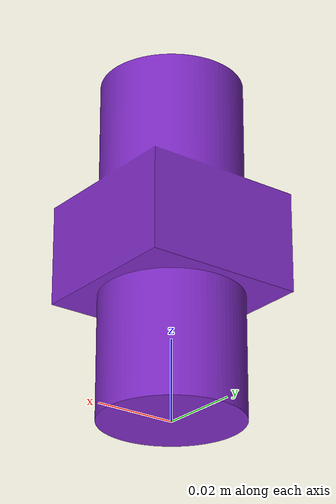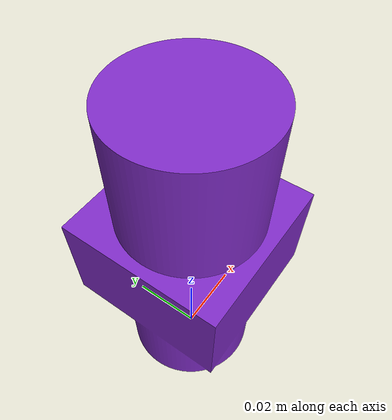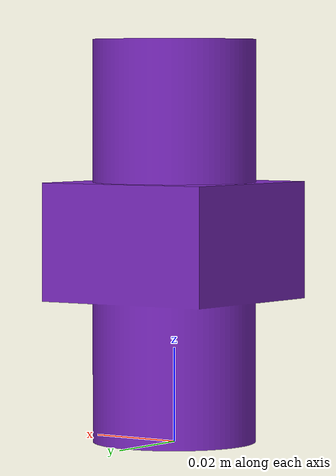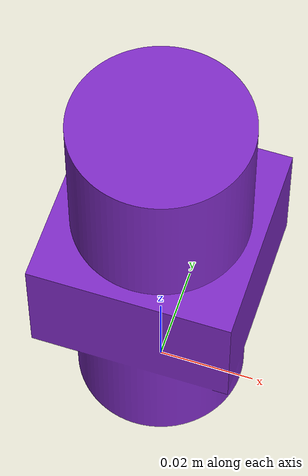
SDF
<?xml version='1.0'?>
<sdf version='1.6'>
  <model name='cran_field_shaft'>
    <link name='link_12'>
      <pose frame=''>0 -0.0859 0 0 -0 0</pose>
<inertial>
    <pose>0 0.0859 0.0427 0 0 0</pose>
    <mass>0.25</mass>
    <inertia>
      <ixx>0.0001769408</ixx>
      <ixy>0</ixy>
      <ixz>-0</ixz>
      <iyy>0.0001769408</iyy>
      <iyz>0</iyz>
      <izz>0.000059999</izz>
    </inertia>
  </inertial>
          <visual name='visual'>
        <geometry>
          <mesh>
            <uri>model://cran_field_shaft/cran_feld_shaft.stl</uri>
            <scale>0.001 0.001 0.001</scale>
          </mesh>
        </geometry>
        <material>
          <ambient>0.5 0.17 0.78 1</ambient>
          <diffuse>0.5 0.17 0.78 1</diffuse>
          <specular>0.01 0.01 0.01 1</specular>
          <emissive>0 0 0 1</emissive>
          <shader type='vertex'>
            <normal_map>__default__</normal_map>
          </shader>
        </material>
        <cast_shadows>1</cast_shadows>
        <transparency>0</transparency>
      </visual>
      <collision name='collision'>
        <laser_retro>0</laser_retro>
        <max_contacts>10</max_contacts>
        <pose frame=''>0 0 0 0 -0 0</pose>
        <geometry>
          <mesh>
            <uri>model://cran_field_shaft/cran_feld_shaft.stl</uri>
            <scale>0.001 0.001 0.001</scale>
          </mesh>
        </geometry>

<surface>
          <friction>
            <ode>
              <mu>1.15</mu>
              <mu2>1.15</mu2>
            </ode>
          </friction>
          <contact>
            <ode>
              <kp>1e15</kp>
              <kd>1e13</kd>
              <min_depth>0.0001</min_depth>
              <max_vel>0</max_vel>
            </ode>
          </contact>
        </surface>
       </collision>
    </link>

    <static>0</static>
    <allow_auto_disable>1</allow_auto_disable>
  </model>
</sdf>
